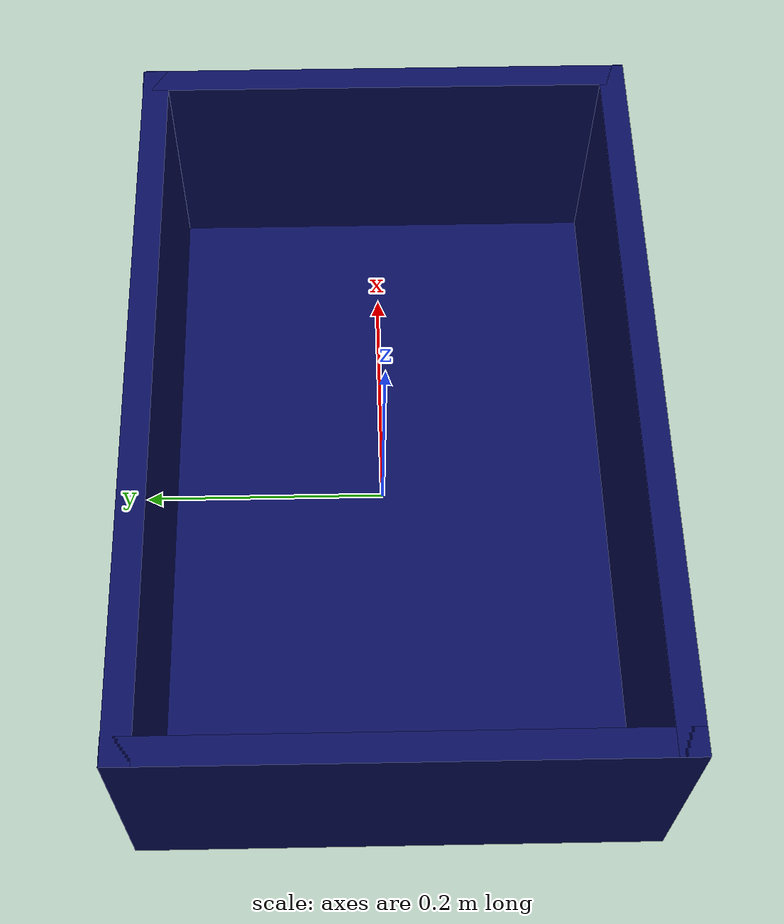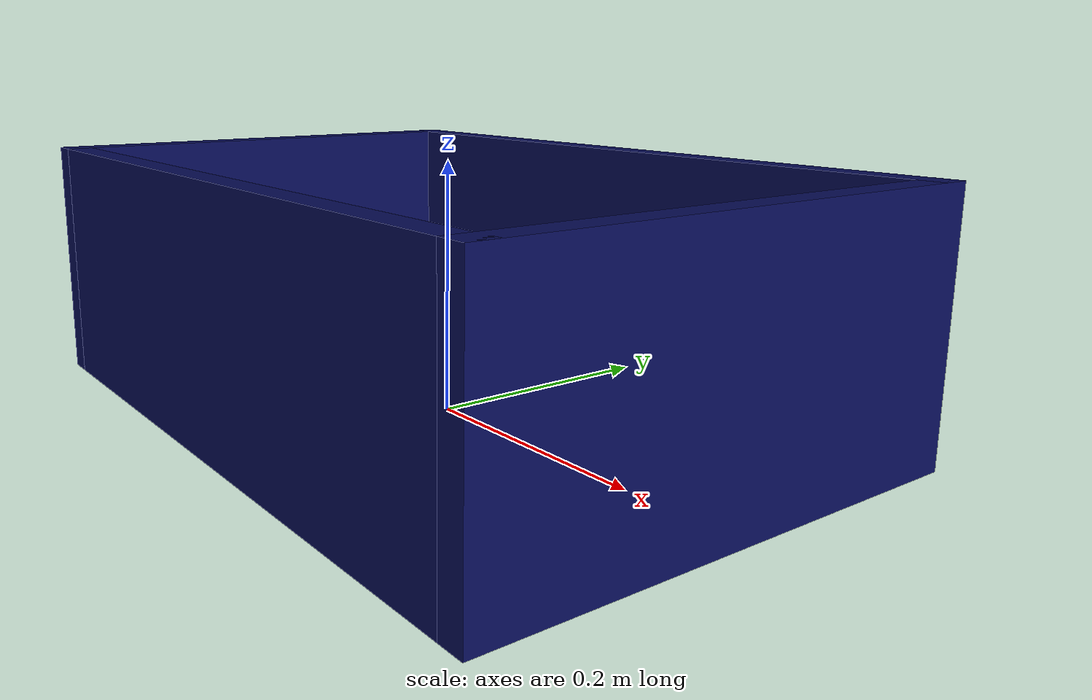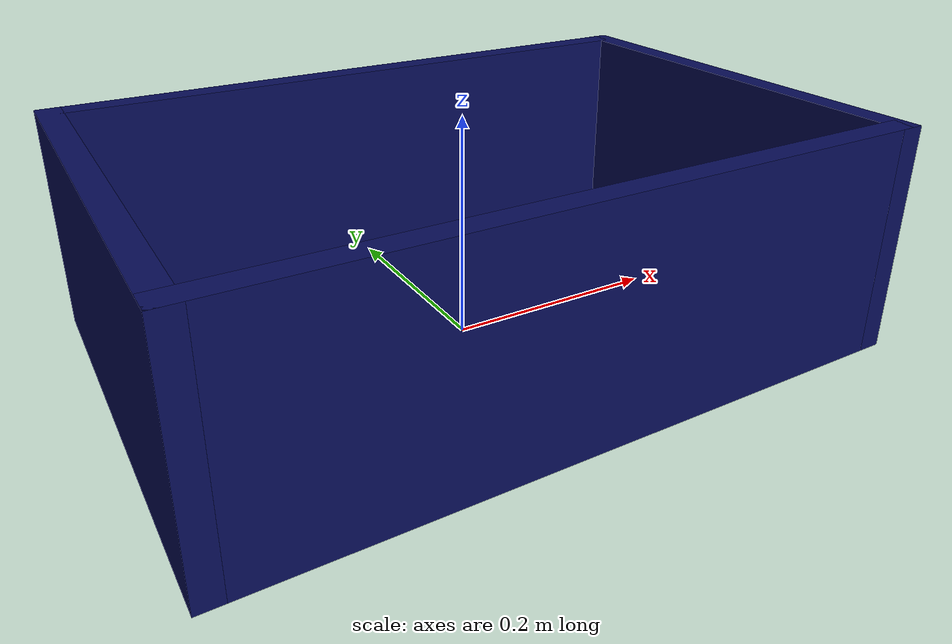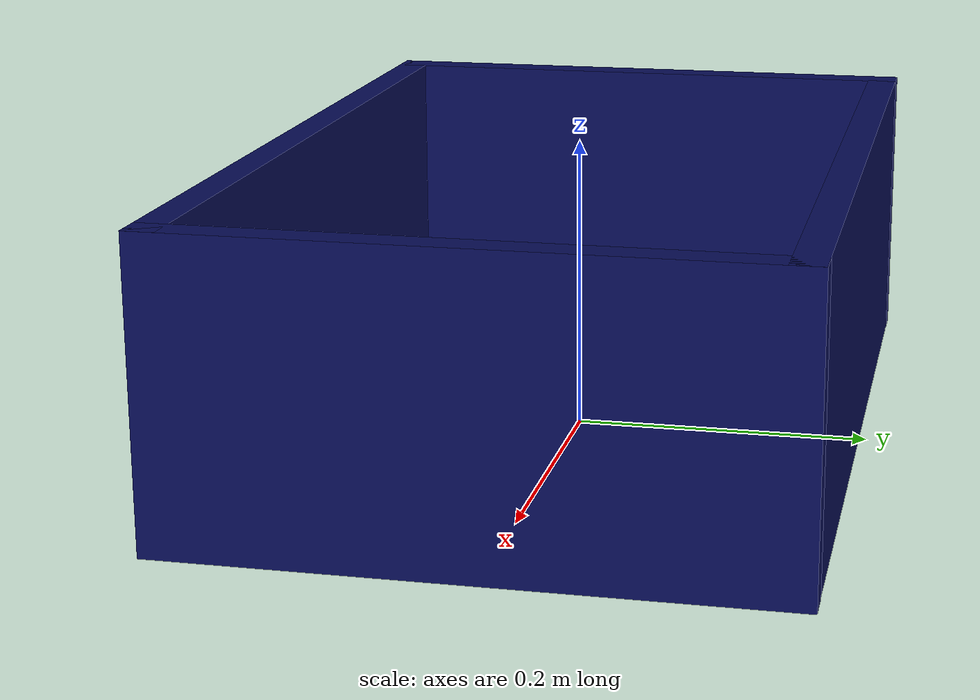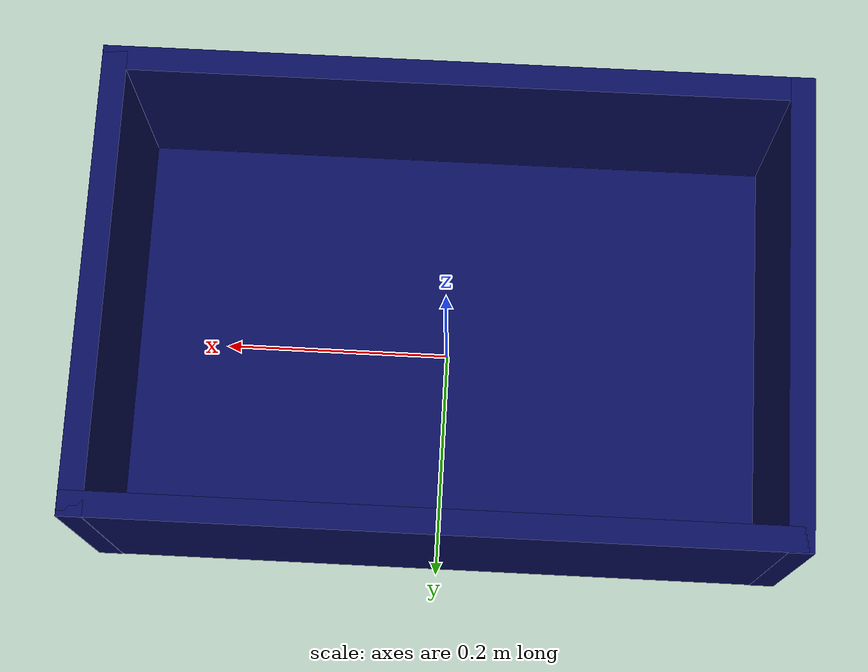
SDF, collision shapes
<sdf version="1.6">
  <model name="stacking_crate">
    <static>false</static>
    <link name="new_link">
      <collision name="Cube">
        <pose>0.00000 -0.00550 0.00600 0.00000 0.00000 0.00000</pose>
        <geometry>
          <box>
            <size>0.60100 0.40100 0.01206</size>
          </box>
        </geometry>
        <surface>
          <contact/>
          <friction>
            <ode>
              <mu>0.1</mu>
              <mu2>0.1</mu2>
            </ode>
          </friction>
        </surface>
      </collision>

      <collision name="Cube.001">
        <pose>0.00000 -0.19600 0.10000 0.00000 0.00000 0.00000</pose>
        <geometry>
          <box>
            <size>0.60100 0.02109 0.20000</size>
          </box>
        </geometry>
        <surface>
          <contact/>
        </surface>
      </collision>

      <collision name="Cube.002">
        <pose>0.00000 0.18460 0.10000 0.00000 0.00000 0.00000</pose>
        <geometry>
          <box>
            <size>0.60100 0.02109 0.20000</size>
          </box>
        </geometry>
        <surface>
          <contact/>
        </surface>
      </collision>

      <collision name="Cube.003">
        <pose>-0.29007 -0.00556 0.10000 0.00000 0.00000 0.00000</pose>
        <geometry>
          <box>
            <size>0.02109 0.40200 0.20000</size>
          </box>
        </geometry>
        <surface>
          <contact/>
        </surface>
      </collision>

      <collision name="Cube.004">
        <pose>0.29012 -0.00556 0.10000 0.00000 0.00000 0.00000</pose>
        <geometry>
          <box>
            <size>0.02109 0.40200 0.20000</size>
          </box>
        </geometry>
        <surface>
          <contact/>
        </surface>
      </collision>

      <inertial>
        <pose>0.00001 -0.00560 0.08120 0.00000 0.00000 0.00000</pose>
        <mass>1.00000</mass>
        <inertia>
          <ixx>0.01075</ixx>
          <ixy>0.00000</ixy>
          <ixz>0.00000</ixz>
          <iyy>0.02074</iyy>
          <iyz>0.00000</iyz>
          <izz>0.02616</izz>
        </inertia>
      </inertial>

      <visual name="node0">
        <pose>-0.48920 -0.29311 0.00000 0.00000 0.00000 0.00000</pose>
        <geometry>
          <mesh>
            <uri>model://stacking_crate/meshes/Body.dae</uri>
            <scale>1.00000 1.00000 1.00000</scale>
          </mesh>
        </geometry>
        <material>
          <diffuse>0.03137 0.05098 0.35294 1.00000</diffuse>
          <specular>1.00000 1.00000 1.00000 0.20392</specular>
        </material>
      </visual>
    </link>

    <plugin filename="gz-sim-pose-publisher-system" name="gz::sim::systems::PosePublisher">
      <publish_link_pose>true</publish_link_pose>
      <publish_sensor_pose>true</publish_sensor_pose>
      <publish_collision_pose>false</publish_collision_pose>
      <publish_visual_pose>false</publish_visual_pose>
      <publish_nested_model_pose>true</publish_nested_model_pose>
      <use_pose_vector_msg>false</use_pose_vector_msg>
      <static_publisher>true</static_publisher>
      <static_update_frequency>10</static_update_frequency>
    </plugin>

  </model>
</sdf>
